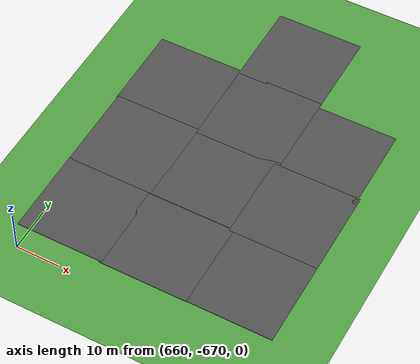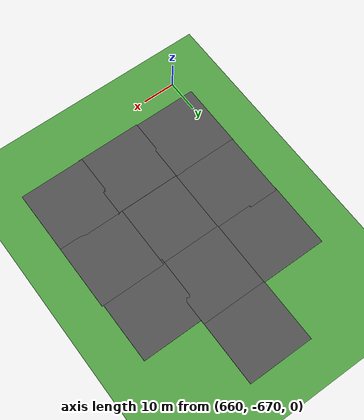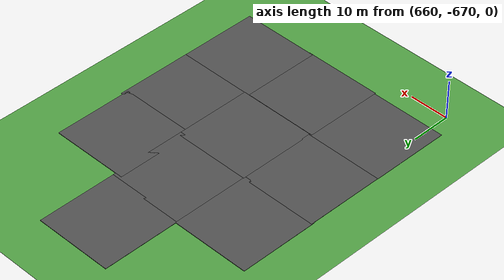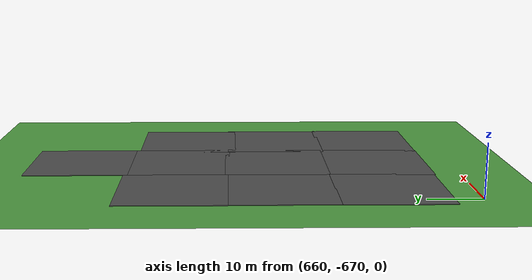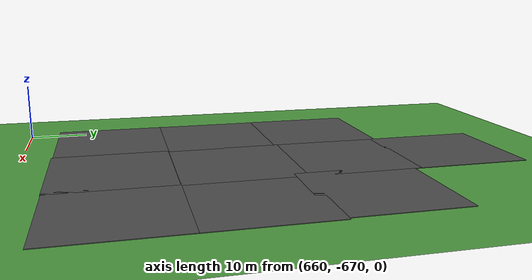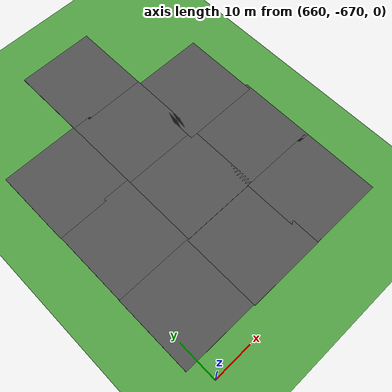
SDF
<sdf version="1.7">
 <world name="default">
  <physics type="ode">
   <ode>
    <solver>
     <type>quick</type>
     <iters>100</iters>
     <sor>1</sor>
     <use_dynamic_moi_rescaling>0</use_dynamic_moi_rescaling>
    </solver>
    <constraints>
     <cfm>0</cfm>
     <erp>0.9</erp>
     <contact_max_correcting_vel>0.1</contact_max_correcting_vel>
     <contact_surface_layer>0</contact_surface_layer>
    </constraints>
   </ode>
   <real_time_update_rate>-1</real_time_update_rate>
   <max_step_size>0.001</max_step_size>
   <real_time_factor>1</real_time_factor>
  </physics>
  <model name="ground_plane">
   <static>1</static>
   <link name="link">
    <collision name="collision">
     <geometry><plane><normal>0 0 1</normal><size>5000 5000</size></plane></geometry>
     <surface><friction><ode><mu>1</mu><mu2>1</mu2></ode></friction></surface>
    </collision>
    <visual name="grass">
     <pose>0 0 -0.1 0 -0 0</pose>
     <cast_shadows>0</cast_shadows>
     <geometry><plane><normal>0 0 1</normal><size>5000 5000</size></plane></geometry>
     <material>
      <script><uri>file://media/materials/scripts/gazebo.material</uri><name>Gazebo/Grass</name></script>
     </material>
    </visual>
   </link>
  </model>
  <light name="sun" type="directional">
   <pose>0 0 10 0 -0 0</pose>
   <diffuse>0.8 0.8 0.8 1</diffuse>
   <specular>0.2 0.2 0.2 1</specular>
   <attenuation>
    <range>1000</range>
    <constant>0.9</constant>
    <linear>0.01</linear>
    <quadratic>0.001</quadratic>
   </attenuation>
   <direction>-0.5 0.1 -0.9</direction>
   <spot><inner_angle>0</inner_angle><outer_angle>0</outer_angle><falloff>0</falloff></spot>
  </light>
  <gravity>0 0 -9.8</gravity>
  <magnetic_field>6e-06 2.3e-05 -4.2e-05</magnetic_field>
  <atmosphere type="adiabatic"/>
  <scene><ambient>0.4 0.4 0.4 1</ambient><background>0.7 0.7 0.7 1</background><shadows>1</shadows></scene>
  <spherical_coordinates>
   <surface_model>EARTH_WGS84</surface_model>
   <latitude_deg>0</latitude_deg>
   <longitude_deg>0</longitude_deg>
   <elevation>0</elevation>
   <heading_deg>0</heading_deg>
  </spherical_coordinates>
  <model name="asphalt_plane">
   <static>1</static>
   <link name="link">
    <collision name="collision"><geometry><box><size>20 20 0.1</size></box></geometry></collision>
    <visual name="visual">
     <cast_shadows>0</cast_shadows>
     <geometry><box><size>20 20 0.1</size></box></geometry>
     <material>
      <script>
       <uri>model://asphalt_plane/materials/scripts</uri>
       <uri>model://asphalt_plane/materials/textures</uri>
       <name>vrc/asphalt</name>
      </script>
     </material>
    </visual>
   </link>
   <pose>686.734 -596.612 0 0 -0 0</pose>
  </model>
  <model name="asphalt_plane_clone">
   <static>1</static>
   <link name="link">
    <collision name="collision"><geometry><box><size>20 20 0.1</size></box></geometry></collision>
    <visual name="visual">
     <cast_shadows>0</cast_shadows>
     <geometry><box><size>20 20 0.1</size></box></geometry>
     <material>
      <script>
       <uri>model://asphalt_plane/materials/scripts</uri>
       <uri>model://asphalt_plane/materials/textures</uri>
       <name>vrc/asphalt</name>
      </script>
     </material>
    </visual>
   </link>
   <pose>666.87 -615.787 0 0 -0 0</pose>
  </model>
  <model name="asphalt_plane_clone_0">
   <static>1</static>
   <link name="link">
    <collision name="collision"><geometry><box><size>20 20 0.1</size></box></geometry></collision>
    <visual name="visual">
     <cast_shadows>0</cast_shadows>
     <geometry><box><size>20 20 0.1</size></box></geometry>
     <material>
      <script>
       <uri>model://asphalt_plane/materials/scripts</uri>
       <uri>model://asphalt_plane/materials/textures</uri>
       <name>vrc/asphalt</name>
      </script>
     </material>
    </visual>
   </link>
   <pose>666.998 -635.154 0 0 -0 0</pose>
  </model>
  <model name="asphalt_plane_clone_1">
   <static>1</static>
   <link name="link">
    <collision name="collision"><geometry><box><size>20 20 0.1</size></box></geometry></collision>
    <visual name="visual">
     <cast_shadows>0</cast_shadows>
     <geometry><box><size>20 20 0.1</size></box></geometry>
     <material>
      <script>
       <uri>model://asphalt_plane/materials/scripts</uri>
       <uri>model://asphalt_plane/materials/textures</uri>
       <name>vrc/asphalt</name>
      </script>
     </material>
    </visual>
   </link>
   <pose>686.749 -635.2 0 0 -0 0</pose>
  </model>
  <model name="asphalt_plane_clone_2">
   <static>1</static>
   <link name="link">
    <collision name="collision"><geometry><box><size>20 20 0.1</size></box></geometry></collision>
    <visual name="visual">
     <cast_shadows>0</cast_shadows>
     <geometry><box><size>20 20 0.1</size></box></geometry>
     <material>
      <script>
       <uri>model://asphalt_plane/materials/scripts</uri>
       <uri>model://asphalt_plane/materials/textures</uri>
       <name>vrc/asphalt</name>
      </script>
     </material>
    </visual>
   </link>
   <pose>686.763 -616.088 0 0 -0 0</pose>
  </model>
  <model name="asphalt_plane_clone_3">
   <static>1</static>
   <link name="link">
    <collision name="collision"><geometry><box><size>20 20 0.1</size></box></geometry></collision>
    <visual name="visual">
     <cast_shadows>0</cast_shadows>
     <geometry><box><size>20 20 0.1</size></box></geometry>
     <material>
      <script>
       <uri>model://asphalt_plane/materials/scripts</uri>
       <uri>model://asphalt_plane/materials/textures</uri>
       <name>vrc/asphalt</name>
      </script>
     </material>
    </visual>
   </link>
   <pose>686.394 -655.245 0 0 -0 0</pose>
  </model>
  <model name="asphalt_plane_clone_4">
   <static>1</static>
   <link name="link">
    <collision name="collision"><geometry><box><size>20 20 0.1</size></box></geometry></collision>
    <visual name="visual">
     <cast_shadows>0</cast_shadows>
     <geometry><box><size>20 20 0.1</size></box></geometry>
     <material>
      <script>
       <uri>model://asphalt_plane/materials/scripts</uri>
       <uri>model://asphalt_plane/materials/textures</uri>
       <name>vrc/asphalt</name>
      </script>
     </material>
    </visual>
   </link>
   <pose>666.935 -654.984 0 0 -0 0</pose>
  </model>
  <model name="asphalt_plane_clone_0_clone">
   <static>1</static>
   <link name="link">
    <collision name="collision"><geometry><box><size>20 20 0.1</size></box></geometry></collision>
    <visual name="visual">
     <cast_shadows>0</cast_shadows>
     <geometry><box><size>20 20 0.1</size></box></geometry>
     <material>
      <script>
       <uri>model://asphalt_plane/materials/scripts</uri>
       <uri>model://asphalt_plane/materials/textures</uri>
       <name>vrc/asphalt</name>
      </script>
     </material>
    </visual>
   </link>
   <pose>705.406 -655.148 0 0 -0 0</pose>
  </model>
  <model name="asphalt_plane_clone_0_clone_0">
   <static>1</static>
   <link name="link">
    <collision name="collision"><geometry><box><size>20 20 0.1</size></box></geometry></collision>
    <visual name="visual">
     <cast_shadows>0</cast_shadows>
     <geometry><box><size>20 20 0.1</size></box></geometry>
     <material>
      <script>
       <uri>model://asphalt_plane/materials/scripts</uri>
       <uri>model://asphalt_plane/materials/textures</uri>
       <name>vrc/asphalt</name>
      </script>
     </material>
    </visual>
   </link>
   <pose>705.417 -635.73 0 0 -0 0</pose>
  </model>
  <model name="asphalt_plane_clone_0_clone_1">
   <static>1</static>
   <link name="link">
    <collision name="collision"><geometry><box><size>20 20 0.1</size></box></geometry></collision>
    <visual name="visual">
     <cast_shadows>0</cast_shadows>
     <geometry><box><size>20 20 0.1</size></box></geometry>
     <material>
      <script>
       <uri>model://asphalt_plane/materials/scripts</uri>
       <uri>model://asphalt_plane/materials/textures</uri>
       <name>vrc/asphalt</name>
      </script>
     </material>
    </visual>
   </link>
   <pose>704.957 -617.312 0 0 -0 0</pose>
  </model>
 </world>
</sdf>
